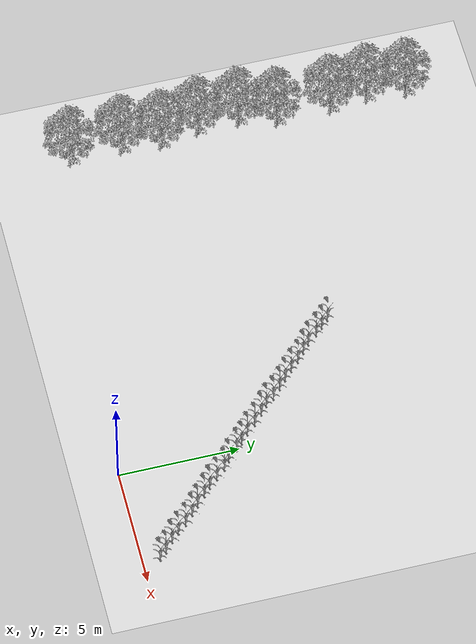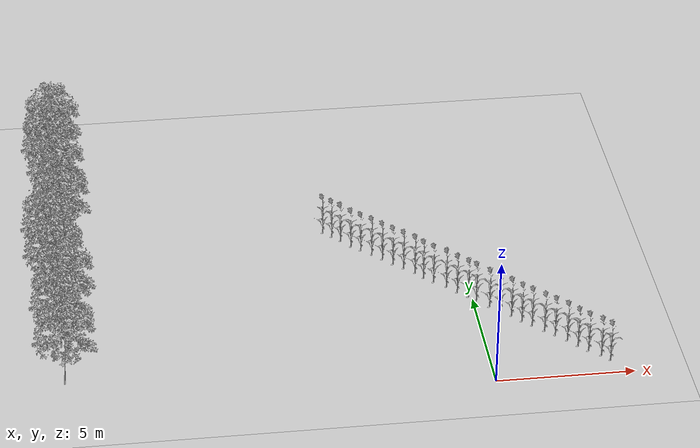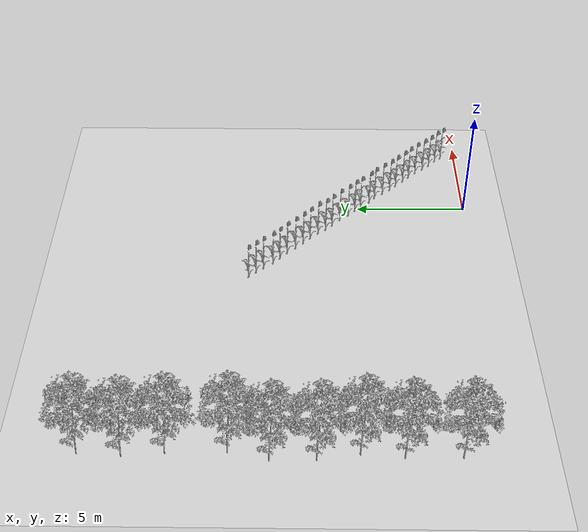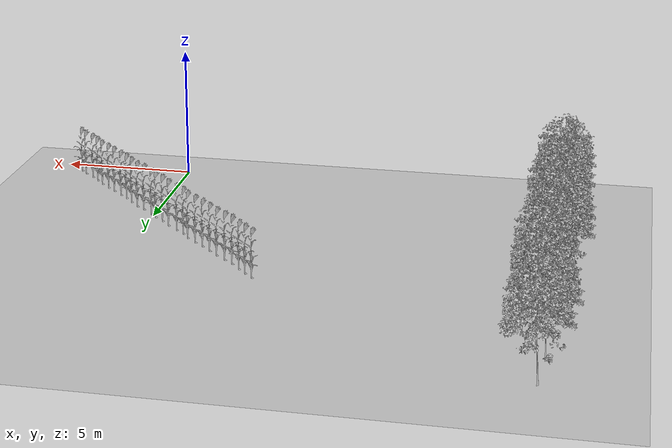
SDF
<sdf version="1.7">
 <world name="farmland_world">
  <model name="ground_plane">
   <static>1</static>
   <link name="link">
    <collision name="collision">
     <geometry><plane><normal>0 0 1</normal><size>40.0 40.0</size></plane></geometry>
     <surface><friction><ode><mu>100</mu><mu2>50</mu2></ode></friction></surface>
    </collision>
    <visual name="visual">
     <cast_shadows>0</cast_shadows>
     <geometry><plane><normal>0 0 1</normal><size>40.0 40.0</size></plane></geometry>
     <material>
      <script><uri>file://media/materials/scripts/gazebo.material</uri><name>Gazebo/Grey</name></script>
     </material>
    </visual>
   </link>
  </model>
  <model name="tree_0_0">
   <static>1</static>
   <link name="link">
    <collision name="collision">
     <geometry><mesh><uri>model://Birch_tree/birch_tree_5p.obj</uri><scale>1 1 1</scale></mesh></geometry>
     <surface><friction><ode><mu>100</mu><mu2>50</mu2></ode></friction></surface>
    </collision>
    <visual name="visual">
     <geometry><mesh><uri>model://Birch_tree/birch_tree_5p.obj</uri><scale>1 1 1</scale></mesh></geometry>
    </visual>
   </link>
   <pose>-15.01281988840407 15.987915325740884 0 0 0 0</pose>
  </model>
  <model name="tree_0_1">
   <static>1</static>
   <link name="link">
    <collision name="collision">
     <geometry><mesh><uri>model://Birch_tree/birch_tree_5p.obj</uri><scale>1 1 1</scale></mesh></geometry>
     <surface><friction><ode><mu>100</mu><mu2>50</mu2></ode></friction></surface>
    </collision>
    <visual name="visual">
     <geometry><mesh><uri>model://Birch_tree/birch_tree_5p.obj</uri><scale>1 1 1</scale></mesh></geometry>
    </visual>
   </link>
   <pose>-15.142069367187368 14.31737158681781 0 0 0 0</pose>
  </model>
  <model name="tree_0_2">
   <static>1</static>
   <link name="link">
    <collision name="collision">
     <geometry><mesh><uri>model://Birch_tree/birch_tree_5p.obj</uri><scale>1 1 1</scale></mesh></geometry>
     <surface><friction><ode><mu>100</mu><mu2>50</mu2></ode></friction></surface>
    </collision>
    <visual name="visual">
     <geometry><mesh><uri>model://Birch_tree/birch_tree_5p.obj</uri><scale>1 1 1</scale></mesh></geometry>
    </visual>
   </link>
   <pose>-14.970317900419376 12.708773482762783 0 0 0 0</pose>
  </model>
  <model name="tree_0_3">
   <static>1</static>
   <link name="link">
    <collision name="collision">
     <geometry><mesh><uri>model://Birch_tree/birch_tree_5p.obj</uri><scale>1 1 1</scale></mesh></geometry>
     <surface><friction><ode><mu>100</mu><mu2>50</mu2></ode></friction></surface>
    </collision>
    <visual name="visual">
     <geometry><mesh><uri>model://Birch_tree/birch_tree_5p.obj</uri><scale>1 1 1</scale></mesh></geometry>
    </visual>
   </link>
   <pose>-14.89422784818972 10.38974894783267 0 0 0 0</pose>
  </model>
  <model name="tree_0_4">
   <static>1</static>
   <link name="link">
    <collision name="collision">
     <geometry><mesh><uri>model://Birch_tree/birch_tree_5p.obj</uri><scale>1 1 1</scale></mesh></geometry>
     <surface><friction><ode><mu>100</mu><mu2>50</mu2></ode></friction></surface>
    </collision>
    <visual name="visual">
     <geometry><mesh><uri>model://Birch_tree/birch_tree_5p.obj</uri><scale>1 1 1</scale></mesh></geometry>
    </visual>
   </link>
   <pose>-15.29056870237701 8.83276883511465 0 0 0 0</pose>
  </model>
  <model name="tree_0_5">
   <static>1</static>
   <link name="link">
    <collision name="collision">
     <geometry><mesh><uri>model://Birch_tree/birch_tree_5p.obj</uri><scale>1 1 1</scale></mesh></geometry>
     <surface><friction><ode><mu>100</mu><mu2>50</mu2></ode></friction></surface>
    </collision>
    <visual name="visual">
     <geometry><mesh><uri>model://Birch_tree/birch_tree_5p.obj</uri><scale>1 1 1</scale></mesh></geometry>
    </visual>
   </link>
   <pose>-15.253138648160432 7.076063995176758 0 0 0 0</pose>
  </model>
  <model name="tree_0_6">
   <static>1</static>
   <link name="link">
    <collision name="collision">
     <geometry><mesh><uri>model://Birch_tree/birch_tree_5p.obj</uri><scale>1 1 1</scale></mesh></geometry>
     <surface><friction><ode><mu>100</mu><mu2>50</mu2></ode></friction></surface>
    </collision>
    <visual name="visual">
     <geometry><mesh><uri>model://Birch_tree/birch_tree_5p.obj</uri><scale>1 1 1</scale></mesh></geometry>
    </visual>
   </link>
   <pose>-14.956752044749479 5.448560813190183 0 0 0 0</pose>
  </model>
  <model name="tree_0_7">
   <static>1</static>
   <link name="link">
    <collision name="collision">
     <geometry><mesh><uri>model://Birch_tree/birch_tree_5p.obj</uri><scale>1 1 1</scale></mesh></geometry>
     <surface><friction><ode><mu>100</mu><mu2>50</mu2></ode></friction></surface>
    </collision>
    <visual name="visual">
     <geometry><mesh><uri>model://Birch_tree/birch_tree_5p.obj</uri><scale>1 1 1</scale></mesh></geometry>
    </visual>
   </link>
   <pose>-15.114653409277617 3.8049867938451256 0 0 0 0</pose>
  </model>
  <model name="tree_0_8">
   <static>1</static>
   <link name="link">
    <collision name="collision">
     <geometry><mesh><uri>model://Birch_tree/birch_tree_5p.obj</uri><scale>1 1 1</scale></mesh></geometry>
     <surface><friction><ode><mu>100</mu><mu2>50</mu2></ode></friction></surface>
    </collision>
    <visual name="visual">
     <geometry><mesh><uri>model://Birch_tree/birch_tree_5p.obj</uri><scale>1 1 1</scale></mesh></geometry>
    </visual>
   </link>
   <pose>-15.07084225556597 1.639582728651649 0 0 0 0</pose>
  </model>
  <model name="tree_3_2">
   <static>1</static>
   <link name="link">
    <collision name="collision">
     <geometry><mesh><uri>model://Corn_low_poly/corn.obj</uri><scale>1 1 1</scale></mesh></geometry>
     <surface><friction><ode><mu>100</mu><mu2>50</mu2></ode></friction></surface>
    </collision>
    <visual name="visual">
     <geometry><mesh><uri>model://Corn_low_poly/corn.obj</uri><scale>1 1 1</scale></mesh></geometry>
    </visual>
   </link>
   <pose>4.265658183051352 0.7187323575307828 0 0 0 0</pose>
  </model>
  <model name="tree_3_3">
   <static>1</static>
   <link name="link">
    <collision name="collision">
     <geometry><mesh><uri>model://Corn_low_poly/corn.obj</uri><scale>1 1 1</scale></mesh></geometry>
     <surface><friction><ode><mu>100</mu><mu2>50</mu2></ode></friction></surface>
    </collision>
    <visual name="visual">
     <geometry><mesh><uri>model://Corn_low_poly/corn.obj</uri><scale>1 1 1</scale></mesh></geometry>
    </visual>
   </link>
   <pose>3.9992636254432417 1.0200566966449816 0 0 0 0</pose>
  </model>
  <model name="tree_3_4">
   <static>1</static>
   <link name="link">
    <collision name="collision">
     <geometry><mesh><uri>model://Corn_low_poly/corn.obj</uri><scale>1 1 1</scale></mesh></geometry>
     <surface><friction><ode><mu>100</mu><mu2>50</mu2></ode></friction></surface>
    </collision>
    <visual name="visual">
     <geometry><mesh><uri>model://Corn_low_poly/corn.obj</uri><scale>1 1 1</scale></mesh></geometry>
    </visual>
   </link>
   <pose>3.6037260756871325 1.3560867874788607 0 0 0 0</pose>
  </model>
  <model name="tree_3_5">
   <static>1</static>
   <link name="link">
    <collision name="collision">
     <geometry><mesh><uri>model://Corn_low_poly/corn.obj</uri><scale>1 1 1</scale></mesh></geometry>
     <surface><friction><ode><mu>100</mu><mu2>50</mu2></ode></friction></surface>
    </collision>
    <visual name="visual">
     <geometry><mesh><uri>model://Corn_low_poly/corn.obj</uri><scale>1 1 1</scale></mesh></geometry>
    </visual>
   </link>
   <pose>3.2885717758542845 1.6918960425416494 0 0 0 0</pose>
  </model>
  <model name="tree_3_6">
   <static>1</static>
   <link name="link">
    <collision name="collision">
     <geometry><mesh><uri>model://Corn_low_poly/corn.obj</uri><scale>1 1 1</scale></mesh></geometry>
     <surface><friction><ode><mu>100</mu><mu2>50</mu2></ode></friction></surface>
    </collision>
    <visual name="visual">
     <geometry><mesh><uri>model://Corn_low_poly/corn.obj</uri><scale>1 1 1</scale></mesh></geometry>
    </visual>
   </link>
   <pose>2.973069469571154 2.074131881871246 0 0 0 0</pose>
  </model>
  <model name="tree_3_7">
   <static>1</static>
   <link name="link">
    <collision name="collision">
     <geometry><mesh><uri>model://Corn_low_poly/corn.obj</uri><scale>1 1 1</scale></mesh></geometry>
     <surface><friction><ode><mu>100</mu><mu2>50</mu2></ode></friction></surface>
    </collision>
    <visual name="visual">
     <geometry><mesh><uri>model://Corn_low_poly/corn.obj</uri><scale>1 1 1</scale></mesh></geometry>
    </visual>
   </link>
   <pose>2.5996115694021285 2.4318018320865624 0 0 0 0</pose>
  </model>
  <model name="tree_3_8">
   <static>1</static>
   <link name="link">
    <collision name="collision">
     <geometry><mesh><uri>model://Corn_low_poly/corn.obj</uri><scale>1 1 1</scale></mesh></geometry>
     <surface><friction><ode><mu>100</mu><mu2>50</mu2></ode></friction></surface>
    </collision>
    <visual name="visual">
     <geometry><mesh><uri>model://Corn_low_poly/corn.obj</uri><scale>1 1 1</scale></mesh></geometry>
    </visual>
   </link>
   <pose>2.2670384877057823 2.734015325655521 0 0 0 0</pose>
  </model>
  <model name="tree_3_9">
   <static>1</static>
   <link name="link">
    <collision name="collision">
     <geometry><mesh><uri>model://Corn_low_poly/corn.obj</uri><scale>1 1 1</scale></mesh></geometry>
     <surface><friction><ode><mu>100</mu><mu2>50</mu2></ode></friction></surface>
    </collision>
    <visual name="visual">
     <geometry><mesh><uri>model://Corn_low_poly/corn.obj</uri><scale>1 1 1</scale></mesh></geometry>
    </visual>
   </link>
   <pose>1.8779109563356289 3.1057997368412216 0 0 0 0</pose>
  </model>
  <model name="tree_3_10">
   <static>1</static>
   <link name="link">
    <collision name="collision">
     <geometry><mesh><uri>model://Corn_low_poly/corn.obj</uri><scale>1 1 1</scale></mesh></geometry>
     <surface><friction><ode><mu>100</mu><mu2>50</mu2></ode></friction></surface>
    </collision>
    <visual name="visual">
     <geometry><mesh><uri>model://Corn_low_poly/corn.obj</uri><scale>1 1 1</scale></mesh></geometry>
    </visual>
   </link>
   <pose>1.55446615600525 3.408964535040425 0 0 0 0</pose>
  </model>
  <model name="tree_3_11">
   <static>1</static>
   <link name="link">
    <collision name="collision">
     <geometry><mesh><uri>model://Corn_low_poly/corn.obj</uri><scale>1 1 1</scale></mesh></geometry>
     <surface><friction><ode><mu>100</mu><mu2>50</mu2></ode></friction></surface>
    </collision>
    <visual name="visual">
     <geometry><mesh><uri>model://Corn_low_poly/corn.obj</uri><scale>1 1 1</scale></mesh></geometry>
    </visual>
   </link>
   <pose>1.2384046897948606 3.781209020469268 0 0 0 0</pose>
  </model>
  <model name="tree_3_12">
   <static>1</static>
   <link name="link">
    <collision name="collision">
     <geometry><mesh><uri>model://Corn_low_poly/corn.obj</uri><scale>1 1 1</scale></mesh></geometry>
     <surface><friction><ode><mu>100</mu><mu2>50</mu2></ode></friction></surface>
    </collision>
    <visual name="visual">
     <geometry><mesh><uri>model://Corn_low_poly/corn.obj</uri><scale>1 1 1</scale></mesh></geometry>
    </visual>
   </link>
   <pose>0.8853832301562431 4.179633585300109 0 0 0 0</pose>
  </model>
  <model name="tree_3_13">
   <static>1</static>
   <link name="link">
    <collision name="collision">
     <geometry><mesh><uri>model://Corn_low_poly/corn.obj</uri><scale>1 1 1</scale></mesh></geometry>
     <surface><friction><ode><mu>100</mu><mu2>50</mu2></ode></friction></surface>
    </collision>
    <visual name="visual">
     <geometry><mesh><uri>model://Corn_low_poly/corn.obj</uri><scale>1 1 1</scale></mesh></geometry>
    </visual>
   </link>
   <pose>0.5449289884762725 4.447238315747111 0 0 0 0</pose>
  </model>
  <model name="tree_3_14">
   <static>1</static>
   <link name="link">
    <collision name="collision">
     <geometry><mesh><uri>model://Corn_low_poly/corn.obj</uri><scale>1 1 1</scale></mesh></geometry>
     <surface><friction><ode><mu>100</mu><mu2>50</mu2></ode></friction></surface>
    </collision>
    <visual name="visual">
     <geometry><mesh><uri>model://Corn_low_poly/corn.obj</uri><scale>1 1 1</scale></mesh></geometry>
    </visual>
   </link>
   <pose>0.12450997632414354 4.875747907738715 0 0 0 0</pose>
  </model>
  <model name="tree_3_15">
   <static>1</static>
   <link name="link">
    <collision name="collision">
     <geometry><mesh><uri>model://Corn_low_poly/corn.obj</uri><scale>1 1 1</scale></mesh></geometry>
     <surface><friction><ode><mu>100</mu><mu2>50</mu2></ode></friction></surface>
    </collision>
    <visual name="visual">
     <geometry><mesh><uri>model://Corn_low_poly/corn.obj</uri><scale>1 1 1</scale></mesh></geometry>
    </visual>
   </link>
   <pose>-0.12644935673562926 5.152544639214256 0 0 0 0</pose>
  </model>
  <model name="tree_3_16">
   <static>1</static>
   <link name="link">
    <collision name="collision">
     <geometry><mesh><uri>model://Corn_low_poly/corn.obj</uri><scale>1 1 1</scale></mesh></geometry>
     <surface><friction><ode><mu>100</mu><mu2>50</mu2></ode></friction></surface>
    </collision>
    <visual name="visual">
     <geometry><mesh><uri>model://Corn_low_poly/corn.obj</uri><scale>1 1 1</scale></mesh></geometry>
    </visual>
   </link>
   <pose>-0.48906248084130427 5.478581246132429 0 0 0 0</pose>
  </model>
  <model name="tree_3_17">
   <static>1</static>
   <link name="link">
    <collision name="collision">
     <geometry><mesh><uri>model://Corn_low_poly/corn.obj</uri><scale>1 1 1</scale></mesh></geometry>
     <surface><friction><ode><mu>100</mu><mu2>50</mu2></ode></friction></surface>
    </collision>
    <visual name="visual">
     <geometry><mesh><uri>model://Corn_low_poly/corn.obj</uri><scale>1 1 1</scale></mesh></geometry>
    </visual>
   </link>
   <pose>-0.8329531416014381 5.873592577247803 0 0 0 0</pose>
  </model>
  <model name="tree_3_18">
   <static>1</static>
   <link name="link">
    <collision name="collision">
     <geometry><mesh><uri>model://Corn_low_poly/corn.obj</uri><scale>1 1 1</scale></mesh></geometry>
     <surface><friction><ode><mu>100</mu><mu2>50</mu2></ode></friction></surface>
    </collision>
    <visual name="visual">
     <geometry><mesh><uri>model://Corn_low_poly/corn.obj</uri><scale>1 1 1</scale></mesh></geometry>
    </visual>
   </link>
   <pose>-1.2541476724648115 6.24432041714659 0 0 0 0</pose>
  </model>
  <model name="tree_3_19">
   <static>1</static>
   <link name="link">
    <collision name="collision">
     <geometry><mesh><uri>model://Corn_low_poly/corn.obj</uri><scale>1 1 1</scale></mesh></geometry>
     <surface><friction><ode><mu>100</mu><mu2>50</mu2></ode></friction></surface>
    </collision>
    <visual name="visual">
     <geometry><mesh><uri>model://Corn_low_poly/corn.obj</uri><scale>1 1 1</scale></mesh></geometry>
    </visual>
   </link>
   <pose>-1.5872894195552345 6.551426827444064 0 0 0 0</pose>
  </model>
  <model name="tree_3_20">
   <static>1</static>
   <link name="link">
    <collision name="collision">
     <geometry><mesh><uri>model://Corn_low_poly/corn.obj</uri><scale>1 1 1</scale></mesh></geometry>
     <surface><friction><ode><mu>100</mu><mu2>50</mu2></ode></friction></surface>
    </collision>
    <visual name="visual">
     <geometry><mesh><uri>model://Corn_low_poly/corn.obj</uri><scale>1 1 1</scale></mesh></geometry>
    </visual>
   </link>
   <pose>-1.851068776514749 6.912236073309552 0 0 0 0</pose>
  </model>
  <model name="tree_3_21">
   <static>1</static>
   <link name="link">
    <collision name="collision">
     <geometry><mesh><uri>model://Corn_low_poly/corn.obj</uri><scale>1 1 1</scale></mesh></geometry>
     <surface><friction><ode><mu>100</mu><mu2>50</mu2></ode></friction></surface>
    </collision>
    <visual name="visual">
     <geometry><mesh><uri>model://Corn_low_poly/corn.obj</uri><scale>1 1 1</scale></mesh></geometry>
    </visual>
   </link>
   <pose>-2.2296328478750116 7.2690703715893745 0 0 0 0</pose>
  </model>
  <model name="tree_3_22">
   <static>1</static>
   <link name="link">
    <collision name="collision">
     <geometry><mesh><uri>model://Corn_low_poly/corn.obj</uri><scale>1 1 1</scale></mesh></geometry>
     <surface><friction><ode><mu>100</mu><mu2>50</mu2></ode></friction></surface>
    </collision>
    <visual name="visual">
     <geometry><mesh><uri>model://Corn_low_poly/corn.obj</uri><scale>1 1 1</scale></mesh></geometry>
    </visual>
   </link>
   <pose>-2.5854089675899123 7.585698937976531 0 0 0 0</pose>
  </model>
  <model name="tree_3_23">
   <static>1</static>
   <link name="link">
    <collision name="collision">
     <geometry><mesh><uri>model://Corn_low_poly/corn.obj</uri><scale>1 1 1</scale></mesh></geometry>
     <surface><friction><ode><mu>100</mu><mu2>50</mu2></ode></friction></surface>
    </collision>
    <visual name="visual">
     <geometry><mesh><uri>model://Corn_low_poly/corn.obj</uri><scale>1 1 1</scale></mesh></geometry>
    </visual>
   </link>
   <pose>-2.942269696586098 7.940994760683 0 0 0 0</pose>
  </model>
  <model name="tree_3_24">
   <static>1</static>
   <link name="link">
    <collision name="collision">
     <geometry><mesh><uri>model://Corn_low_poly/corn.obj</uri><scale>1 1 1</scale></mesh></geometry>
     <surface><friction><ode><mu>100</mu><mu2>50</mu2></ode></friction></surface>
    </collision>
    <visual name="visual">
     <geometry><mesh><uri>model://Corn_low_poly/corn.obj</uri><scale>1 1 1</scale></mesh></geometry>
    </visual>
   </link>
   <pose>-3.2921047676136608 8.308311606848873 0 0 0 0</pose>
  </model>
  <model name="tree_3_25">
   <static>1</static>
   <link name="link">
    <collision name="collision">
     <geometry><mesh><uri>model://Corn_low_poly/corn.obj</uri><scale>1 1 1</scale></mesh></geometry>
     <surface><friction><ode><mu>100</mu><mu2>50</mu2></ode></friction></surface>
    </collision>
    <visual name="visual">
     <geometry><mesh><uri>model://Corn_low_poly/corn.obj</uri><scale>1 1 1</scale></mesh></geometry>
    </visual>
   </link>
   <pose>-3.6685708244672175 8.633901353866433 0 0 0 0</pose>
  </model>
  <model name="tree_3_26">
   <static>1</static>
   <link name="link">
    <collision name="collision">
     <geometry><mesh><uri>model://Corn_low_poly/corn.obj</uri><scale>1 1 1</scale></mesh></geometry>
     <surface><friction><ode><mu>100</mu><mu2>50</mu2></ode></friction></surface>
    </collision>
    <visual name="visual">
     <geometry><mesh><uri>model://Corn_low_poly/corn.obj</uri><scale>1 1 1</scale></mesh></geometry>
    </visual>
   </link>
   <pose>-4.009598726458465 8.932714977302597 0 0 0 0</pose>
  </model>
  <model name="tree_3_27">
   <static>1</static>
   <link name="link">
    <collision name="collision">
     <geometry><mesh><uri>model://Corn_low_poly/corn.obj</uri><scale>1 1 1</scale></mesh></geometry>
     <surface><friction><ode><mu>100</mu><mu2>50</mu2></ode></friction></surface>
    </collision>
    <visual name="visual">
     <geometry><mesh><uri>model://Corn_low_poly/corn.obj</uri><scale>1 1 1</scale></mesh></geometry>
    </visual>
   </link>
   <pose>-4.353696469356814 9.35454520600792 0 0 0 0</pose>
  </model>
  <model name="tree_3_28">
   <static>1</static>
   <link name="link">
    <collision name="collision">
     <geometry><mesh><uri>model://Corn_low_poly/corn.obj</uri><scale>1 1 1</scale></mesh></geometry>
     <surface><friction><ode><mu>100</mu><mu2>50</mu2></ode></friction></surface>
    </collision>
    <visual name="visual">
     <geometry><mesh><uri>model://Corn_low_poly/corn.obj</uri><scale>1 1 1</scale></mesh></geometry>
    </visual>
   </link>
   <pose>-4.647966656744524 9.66795024091239 0 0 0 0</pose>
  </model>
  <model name="tree_3_29">
   <static>1</static>
   <link name="link">
    <collision name="collision">
     <geometry><mesh><uri>model://Corn_low_poly/corn.obj</uri><scale>1 1 1</scale></mesh></geometry>
     <surface><friction><ode><mu>100</mu><mu2>50</mu2></ode></friction></surface>
    </collision>
    <visual name="visual">
     <geometry><mesh><uri>model://Corn_low_poly/corn.obj</uri><scale>1 1 1</scale></mesh></geometry>
    </visual>
   </link>
   <pose>-4.9558995729017274 9.985142261129077 0 0 0 0</pose>
  </model>
 </world>
</sdf>
